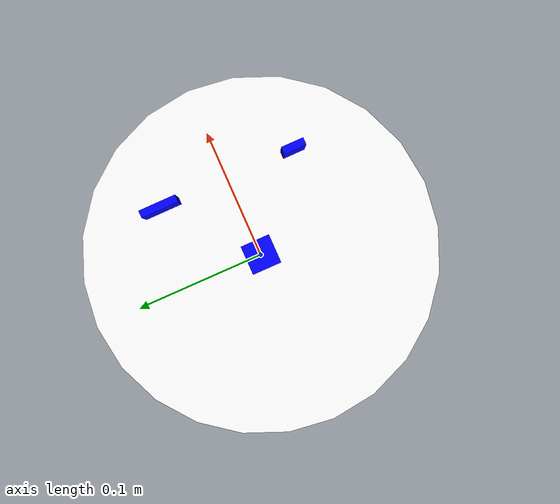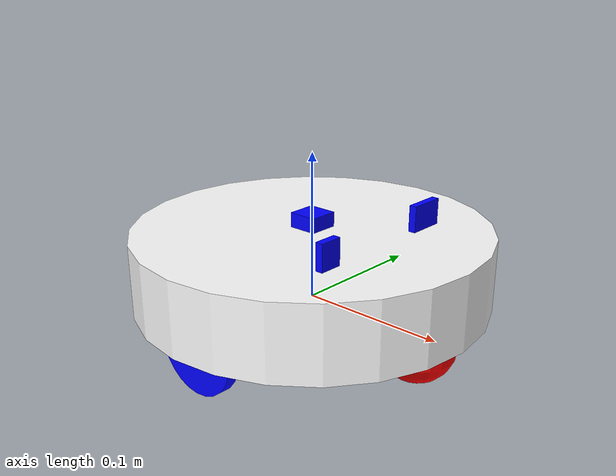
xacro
<?xml version="1.0"?>
<robot xmlns:xacro="http://www.ros.org/wiki/xacro"  name="robot">

<!-- ROS2 control is definitely better for the real robot but can be a little funkier in Gazebo -->
  <xacro:arg name="use_ros2_control" default="true" />

  <xacro:include filename="robot_core.xacro" />

  <xacro:if value="$(arg use_ros2_control)">
    <xacro:include filename="ros2_control.xacro" />
  </xacro:if>
  <xacro:unless value="$(arg use_ros2_control)">
    <xacro:include filename="gazebo_control.xacro" />
  </xacro:unless>

  <xacro:include filename="camera.xacro" />
  <xacro:include filename="imu.xacro" />

</robot>

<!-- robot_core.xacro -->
<robot xmlns:xacro="http://www.ros.org/wiki/xacro"  name="robot">

  <xacro:include filename="inertial_macros.xacro" />

  <material name="black">
    <color rgba="0 0 0 1"/>
  </material>

  <material name="white">
    <color rgba="1 1 1 1"/>
  </material>

  <material name="orange">
    <color rgba="1 0.5 0 1"/>
  </material>

  <material name="blue">
    <color rgba="0 0 1 1"/>
  </material>

  <material name="red">
    <color rgba="1 0 0 1"/>
  </material>

  <material name="green">
    <color rgba="0 1 0 1"/>
  </material>

  <!-- BASE LINK -->

  <!-- Set to be the center of the two drive wheels -->
  <link name="base_link">

  </link>

  <!-- BASE FOOTPRINT LINK -->

  <joint name="base_footprint_joint" type="fixed">
  	<parent link="base_link"/>
  	<child link="base_footprint"/>
  	<origin xyz="0 0 0" rpy="0 0 0"/>
  </joint>

  <link name="base_footprint">
  </link>
  <!-- CHASSIS LINK -->

  <joint name="chassis_joint" type="fixed">
    <parent link="base_link"/>
    <child link="chassis"/>
    <origin xyz="0 0 0.025" />
  </joint>

  <link name="chassis">
    <!-- Cylinder with r=120mm, h=50mm (ASSUMPTION) -->
    <visual>
      <geometry>
        <cylinder length="0.05" radius="0.12"/>
      </geometry>
      <material name="white"/>
    </visual>
    <collision>
      <geometry>
        <cylinder length="0.05" radius="0.12"/>
      </geometry>
    </collision>
    <!-- Mass=0.5kg (ASSUMPTION) -->
    <xacro:inertial_cylinder mass="0.5" length="0.05" radius="0.12">
      <!-- Not sure if this is correct -->
      <origin xyz="0 0 0.025" rpy="0 0 0"/>
    </xacro:inertial_cylinder>
  </link>

  <gazebo reference="chassis">
    <material>Gazebo/White</material>
  </gazebo>

  <!-- LEFT WHEEL LINK -->
  <joint name="left_wheel_joint" type="continuous">
    <parent link="base_link"/>
    <child link="left_wheel"/>
    <origin xyz="0 0.1 0" rpy="-${pi/2} 0 0"/>
    <axis xyz="0 0 1"/>
  </joint>

  <link name="left_wheel">
    <!-- Cylinder with r=30mm, h=8mm (FROM WEBSITE) -->
    <visual>
      <geometry>
        <cylinder length="0.008" radius="0.03"/>
      </geometry>
      <material name="blue"/>
    </visual>
    <collision>
      <geometry>
        <cylinder length="0.008" radius="0.03"/>
      </geometry>
    </collision>
    <!-- Mass=0.1kg (ASSUMPTION) -->
    <xacro:inertial_cylinder mass="0.1" length="0.008" radius="0.03">
      <origin xyz="0 0 0" rpy="0 0 0"/>
    </xacro:inertial_cylinder>
  </link>

  <gazebo reference="left_wheel">
    <material>Gazebo/Blue</material>
  </gazebo>

  <!-- RIGHT WHEEL LINK -->
  <joint name="right_wheel_joint" type="continuous">
    <parent link="base_link"/>
    <child link="right_wheel"/>
    <origin xyz="0 -0.10 0" rpy="${pi/2} 0 0"/>
    <axis xyz="0 0 -1"/>
  </joint>

  <link name="right_wheel">
    <!-- Cylinder with r=30mm, h=8mm (FROM WEBSITE) -->
    <visual>
      <geometry>
        <cylinder length="0.008" radius="0.03"/>
      </geometry>
      <material name="blue"/>
    </visual>
    <collision>
      <geometry>
        <cylinder length="0.008" radius="0.03"/>
      </geometry>
    </collision>
    <!-- Mass=0.1kg (ASSUMPTION) -->
    <xacro:inertial_cylinder mass="0.1" length="0.008" radius="0.03">
      <origin xyz="0 0 0" rpy="0 0 0"/>
    </xacro:inertial_cylinder>
  </link>

  <gazebo reference="right_wheel">
    <material>Gazebo/Blue</material>
  </gazebo>

  <!-- CASTER WHEEL LINK -->
  <!-- Frictionless ball that does not rotate -->

   <joint name="caster_wheel_joint" type="fixed">
	<parent link="chassis"/>
	<child link="caster_wheel"/>
	<origin xyz="-0.0875 0 -0.03"/>
  </joint>

  <link name="caster_wheel">
	<!-- Sphere with r=25mm (ASSUMPTION) -->
	<visual>
  	<geometry>
    	<sphere radius="0.025"/>
  	</geometry>
  	<material name="blue"/>
	</visual>
	<collision>
  	<geometry>
    	<sphere radius="0.025"/>
  	</geometry>
	</collision>
	<!-- Mass=0.1kg (ASSUMPTION) -->
	<xacro:inertial_sphere mass="0.1" radius="0.025">
  	<origin xyz="0 0 0" rpy="0 0 0"/>
	</xacro:inertial_sphere>
  </link>

  <!-- No friction -->
  <gazebo reference="caster_wheel">
	<material>Gazebo/Blue</material>
	<mu1>0.001</mu1>
	<mu2>0.001</mu2>
  </gazebo>

  <joint name="front_caster_wheel_joint" type="fixed">
    <parent link="chassis"/>
    <child link="caster_wheel_2"/>
    <origin xyz="0.0875 0 -0.03"/>
  </joint>

  <link name="caster_wheel_2">
    <!-- Sphere with r=25mm (ASSUMPTION) -->
    <visual>
      <geometry>
        <sphere radius="0.025"/>
      </geometry>
      <material name="red"/>
    </visual>
    <collision>
      <geometry>
        <sphere radius="0.025"/>
      </geometry>
    </collision>
    <!-- Mass=0.1kg (ASSUMPTION) -->
    <xacro:inertial_sphere mass="0.1" radius="0.025">
      <origin xyz="0 0 0" rpy="0 0 0"/>
    </xacro:inertial_sphere>
  </link>

  <gazebo reference="caster_wheel_2">
    <material>Gazebo/Red</material>
    <mu1>0.001</mu1>
    <mu2>0.001</mu2>
  </gazebo>
</robot>

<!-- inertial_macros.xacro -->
<robot xmlns:xacro="http://www.ros.org/wiki/xacro" >

    <!-- Specify some standard inertial calculations https://en.wikipedia.org/wiki/List_of_moments_of_inertia -->
    <!-- From https://github.com/joshnewans/articubot_one/blob/d5aa5e9bc9039073c0d8fd7fe426e170be79c087/description/inertial_macros.xacro -->
    <!-- These make use of xacro's mathematical functionality -->

    <xacro:macro name="inertial_sphere" params="mass radius *origin">
        <inertial>
            <xacro:insert_block name="origin"/>
            <mass value="${mass}" />
            <inertia ixx="${(2/5) * mass * (radius*radius)}" ixy="0.0" ixz="0.0"
                    iyy="${(2/5) * mass * (radius*radius)}" iyz="0.0"
                    izz="${(2/5) * mass * (radius*radius)}" />
        </inertial>
    </xacro:macro>

    <xacro:macro name="inertial_box" params="mass x y z *origin">
        <inertial>
            <xacro:insert_block name="origin"/>
            <mass value="${mass}" />
            <inertia ixx="${(1/12) * mass * (y*y+z*z)}" ixy="0.0" ixz="0.0"
                    iyy="${(1/12) * mass * (x*x+z*z)}" iyz="0.0"
                    izz="${(1/12) * mass * (x*x+y*y)}" />
        </inertial>
    </xacro:macro>

    <xacro:macro name="inertial_cylinder" params="mass length radius *origin">
        <inertial>
            <xacro:insert_block name="origin"/>
            <mass value="${mass}" />
            <inertia ixx="${(1/12) * mass * (3*radius*radius + length*length)}" ixy="0.0" ixz="0.0"
                    iyy="${(1/12) * mass * (3*radius*radius + length*length)}" iyz="0.0"
                    izz="${(1/2) * mass * (radius*radius)}" />
        </inertial>
    </xacro:macro>

</robot>

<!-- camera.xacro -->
<robot xmlns:xacro="http://www.ros.org/wiki/xacro" name="robot">
  <!-- Left Camera -->
  <joint name="left_camera_joint" type="fixed">
    <parent link="chassis"/>
    <child link="left_camera_link"/>
    <origin xyz="0.055 -0.0475 0.03" rpy="0 0.005 0" />
  </joint>

  <link name="left_camera_link">
    <!-- Box with dimensions 50mm x 30mm x 30mm -->
    <visual>
      <geometry>
        <box size="0.005 0.0154 0.0254 " />
      </geometry>
      <material name="blue"/>
    </visual>
  </link>

  <joint name="left_camera_optical_joint" type="fixed">
    <parent link="left_camera_link"/>
    <child link="left_camera_link_optical"/>
    <origin xyz="0 0 0" rpy="${-pi/2} 0 ${-pi/2}" />
  </joint>

  <link name="left_camera_link_optical"></link>

  <gazebo reference="left_camera_link">
    <material>Gazebo/Green</material>
    <sensor name="left_camera" type="camera">
      <pose>0 0 0 0 0 0</pose>
      <visualize>true</visualize>
      <update_rate>10</update_rate>
      <camera>
        <horizontal_fov>1.089</horizontal_fov>
        <image>
          <format>R8G8B8</format>
          <width>640</width>
          <height>480</height>
        </image>
        <clip>
          <near>0.005</near>
          <far>20.0</far>
        </clip>
      </camera>
      <plugin name="left_camera_controller" filename="libgazebo_ros_camera.so">
        <image_topic_name>left_camera/image_raw</image_topic_name>
        <frame_name>left_camera_link_optical</frame_name>
      </plugin>
    </sensor>
  </gazebo>

  <!-- Right Camera -->
  <joint name="right_camera_joint" type="fixed">
    <parent link="chassis"/>
    <child link="right_camera_link"/>
    <origin xyz="0.055 0.0475 0.03" rpy="0 0.005 0" />
  </joint>

  <link name="right_camera_link">
    <!-- Box with dimensions 50mm x 30mm x 30mm -->
    <visual>
      <geometry>
        <box size="0.005 0.0254 0.0254" />
      </geometry>
      <material name="blue"/>
    </visual>
  </link>

  <joint name="right_camera_optical_joint" type="fixed">
    <parent link="right_camera_link"/>
    <child link="right_camera_link_optical"/>
    <origin xyz="0 0 0" rpy="${-pi/2} 0 ${-pi/2}" />
  </joint>

  <link name="right_camera_link_optical"></link>

  <gazebo reference="right_camera_link">
    <material>Gazebo/Green</material>
    <sensor name="right_camera" type="camera">
      <pose>0 0 0 0 0 0</pose>
      <visualize>true</visualize>
      <update_rate>10</update_rate>
      <camera>
        <horizontal_fov>1.089</horizontal_fov>
        <image>
          <format>R8G8B8</format>
          <width>640</width>
          <height>480</height>
        </image>
        <clip>
          <near>0.005</near>
          <far>20.0</far>
        </clip>
      </camera>
      <plugin name="right_camera_controller" filename="libgazebo_ros_camera.so">
        <image_topic_name>right_camera/image_raw</image_topic_name>
        <frame_name>right_camera_link_optical</frame_name>
      </plugin>
    </sensor>
  </gazebo>
</robot>

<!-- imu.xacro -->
<robot xmlns:xacro="http://www.ros.org/wiki/xacro">
  <joint name="imu_joint" type="fixed">
    <parent link="chassis"/>
    <child link="imu_link"/>
    <origin xyz="0 0 0.025" rpy="0 0.005 0" />
  </joint>

  <link name="imu_link">
    <visual>
      <geometry>
        <box size="0.02 0.02 0.02" />
      </geometry>
      <material name="blue"/>
    </visual>
  </link>

  <gazebo reference="imu_link">
    <gravity>true</gravity>
    <sensor name="imu_sensor" type="imu">
      <always_on>true</always_on>
      <update_rate>100</update_rate>
      <visualize>true</visualize> <!-- Set to false if you don't want to visualize the IMU in Gazebo -->
      <plugin filename="libgazebo_ros_imu_sensor.so" name="imu_plugin">
        <topicName>imu</topicName>
        <bodyName>imu_link</bodyName>
        <updateRateHZ>10.0</updateRateHZ>
        <gaussianNoise>0.0</gaussianNoise> <!-- Adjust noise parameters according to your needs -->
        <xyzNoise>0.0 0.0 0.0</xyzNoise>
        <rpyNoise>0.0 0.0 0.0</rpyNoise>
        <xyzOffset>0 0 0</xyzOffset>
        <rpyOffset>0 0 0</rpyOffset>
        <frameName>imu_link</frameName>
        <initialOrientationAsReference>false</initialOrientationAsReference>
      </plugin>
    </sensor>
  </gazebo>
</robot>
